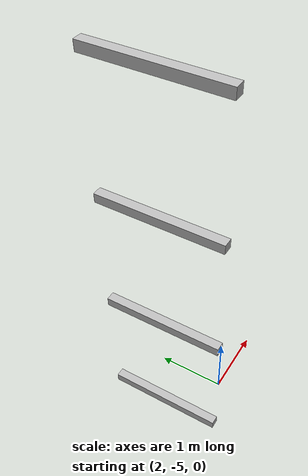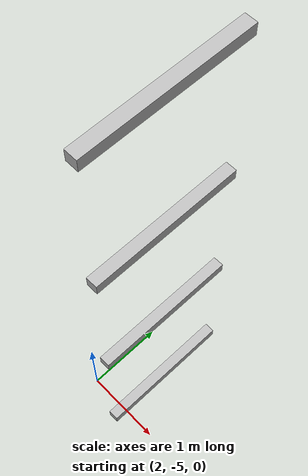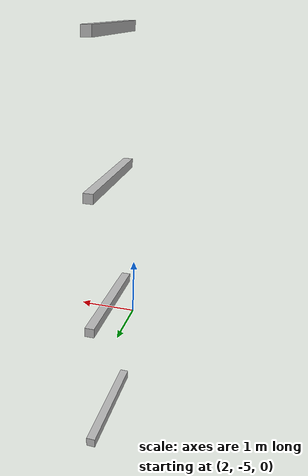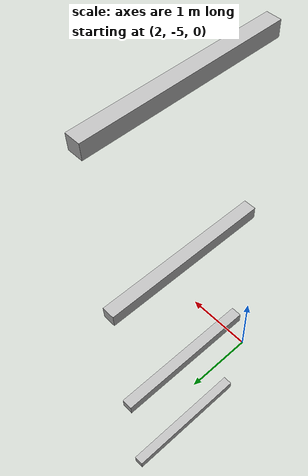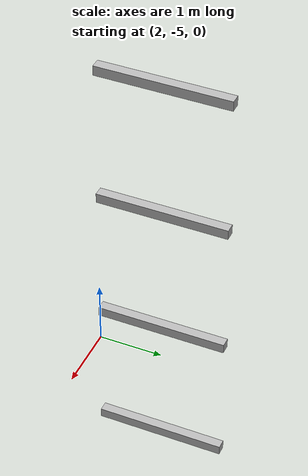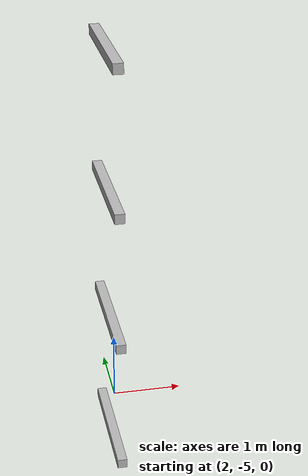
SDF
<sdf version="1.7">
 <world name="default">
  <model name="orthogonal_747_2.000.15_TS">
   <static>1</static>
   <link name="y_link_0_0_4">
    <inertial>
     <mass>1</mass>
     <inertia>
      <ixx>0.166667</ixx>
      <ixy>0</ixy>
      <ixz>0</ixz>
      <iyy>0.166667</iyy>
      <iyz>0</iyz>
      <izz>0.166667</izz>
     </inertia>
    </inertial>
    <pose>8.6 1.075 1.075 0 -0 0</pose>
    <visual name="visual_0">
     <laser_retro>92</laser_retro>
     <geometry><box><size>0.15 1e-06 0.15</size></box></geometry>
     <material>
      <script><name>Gazebo/Grey</name><uri>file://media/materials/scripts/gazebo.material</uri></script>
      <shader type="pixel"><normal_map>__default__</normal_map></shader>
      <ambient>0.678 0.498 0.659 1</ambient>
      <diffuse>0.7 0.7 0.7 1</diffuse>
      <specular>0.01 0.01 0.01 1</specular>
      <emissive>0 0 0 1</emissive>
     </material>
     <pose>0 -1 0 0 -0 0</pose>
     <transparency>1</transparency>
    </visual>
    <visual name="visual_1">
     <laser_retro>93</laser_retro>
     <geometry><box><size>0.15 1e-06 0.15</size></box></geometry>
     <material>
      <script><name>Gazebo/Grey</name><uri>file://media/materials/scripts/gazebo.material</uri></script>
      <shader type="pixel"><normal_map>__default__</normal_map></shader>
      <ambient>0.447 0.624 0.812 1</ambient>
      <diffuse>0.7 0.7 0.7 1</diffuse>
      <specular>0.01 0.01 0.01 1</specular>
      <emissive>0 0 0 1</emissive>
     </material>
     <pose>0 1 0 0 -0 0</pose>
     <transparency>1</transparency>
    </visual>
    <visual name="visual_2">
     <laser_retro>94</laser_retro>
     <geometry><box><size>0.15 2 1e-06</size></box></geometry>
     <material>
      <script><name>Gazebo/Grey</name><uri>file://media/materials/scripts/gazebo.material</uri></script>
      <shader type="pixel"><normal_map>__default__</normal_map></shader>
      <ambient>0.988 0.686 0.243 1</ambient>
      <diffuse>0.7 0.7 0.7 1</diffuse>
      <specular>0.01 0.01 0.01 1</specular>
      <emissive>0 0 0 1</emissive>
     </material>
     <pose>0 0 -0.075 0 -0 0</pose>
     <transparency>1</transparency>
    </visual>
    <visual name="visual_3">
     <laser_retro>95</laser_retro>
     <geometry><box><size>1e-06 2 0.15</size></box></geometry>
     <material>
      <script><name>Gazebo/Grey</name><uri>file://media/materials/scripts/gazebo.material</uri></script>
      <shader type="pixel"><normal_map>__default__</normal_map></shader>
      <ambient>0.988 0.914 0.31 1</ambient>
      <diffuse>0.7 0.7 0.7 1</diffuse>
      <specular>0.01 0.01 0.01 1</specular>
      <emissive>0 0 0 1</emissive>
     </material>
     <pose>0.075 0 0 0 -0 0</pose>
     <transparency>1</transparency>
    </visual>
    <visual name="visual_4">
     <laser_retro>96</laser_retro>
     <geometry><box><size>0.15 2 1e-06</size></box></geometry>
     <material>
      <script><name>Gazebo/Grey</name><uri>file://media/materials/scripts/gazebo.material</uri></script>
      <shader type="pixel"><normal_map>__default__</normal_map></shader>
      <ambient>0.937 0.161 0.161 1</ambient>
      <diffuse>0.7 0.7 0.7 1</diffuse>
      <specular>0.01 0.01 0.01 1</specular>
      <emissive>0 0 0 1</emissive>
     </material>
     <pose>0 0 0.075 0 -0 0</pose>
     <transparency>1</transparency>
    </visual>
    <visual name="visual_5">
     <laser_retro>97</laser_retro>
     <geometry><box><size>1e-06 2 0.15</size></box></geometry>
     <material>
      <script><name>Gazebo/Grey</name><uri>file://media/materials/scripts/gazebo.material</uri></script>
      <shader type="pixel"><normal_map>__default__</normal_map></shader>
      <ambient>0.541 0.886 0.204 1</ambient>
      <diffuse>0.7 0.7 0.7 1</diffuse>
      <specular>0.01 0.01 0.01 1</specular>
      <emissive>0 0 0 1</emissive>
     </material>
     <pose>-0.075 0 0 0 -0 0</pose>
     <transparency>1</transparency>
    </visual>
    <visual name="visual_texture">
     <geometry><box><size>0.149985 1.9998 0.149985</size></box></geometry>
     <material>
      <script>
       <uri>model://BASE_MODELS/simple_block_v2_textured/materials/scripts</uri>
       <uri>model://BASE_MODELS/simple_block_v2_textured/materials/textures</uri>
       <name>metal</name>
      </script>
     </material>
     <laser_retro>98</laser_retro>
    </visual>
    <collision name="collision">
     <geometry><box><size>0.15 2 0.15</size></box></geometry>
     <surface>
      <friction>
       <ode><mu>1</mu><mu2>1</mu2><fdir1>0 0 0</fdir1><slip1>0</slip1><slip2>0</slip2></ode>
       <torsional>
        <coefficient>1</coefficient>
        <patch_radius>0</patch_radius>
        <surface_radius>0</surface_radius>
        <use_patch_radius>1</use_patch_radius>
        <ode><slip>0</slip></ode>
       </torsional>
      </friction>
      <bounce><restitution_coefficient>0</restitution_coefficient><threshold>1e+06</threshold></bounce>
      <contact>
       <collide_without_contact>0</collide_without_contact>
       <collide_without_contact_bitmask>1</collide_without_contact_bitmask>
       <collide_bitmask>1</collide_bitmask>
       <ode>
        <soft_cfm>0</soft_cfm>
        <soft_erp>0.2</soft_erp>
        <kp>1e+13</kp>
        <kd>1</kd>
        <max_vel>0.01</max_vel>
        <min_depth>0</min_depth>
       </ode>
       <bullet>
        <split_impulse>1</split_impulse>
        <split_impulse_penetration_threshold>-0.01</split_impulse_penetration_threshold>
        <soft_cfm>0</soft_cfm>
        <soft_erp>0.2</soft_erp>
        <kp>1e+13</kp>
        <kd>1</kd>
       </bullet>
      </contact>
     </surface>
    </collision>
   </link>
   <link name="y_link_1_0_4">
    <inertial>
     <mass>1</mass>
     <inertia>
      <ixx>0.166667</ixx>
      <ixy>0</ixy>
      <ixz>0</ixz>
      <iyy>0.166667</iyy>
      <iyz>0</iyz>
      <izz>0.166667</izz>
     </inertia>
    </inertial>
    <pose>8.6 1.075 3.225 0 -0 0</pose>
    <visual name="visual_0">
     <laser_retro>869</laser_retro>
     <geometry><box><size>0.15 1e-06 0.15</size></box></geometry>
     <material>
      <script><name>Gazebo/Grey</name><uri>file://media/materials/scripts/gazebo.material</uri></script>
      <shader type="pixel"><normal_map>__default__</normal_map></shader>
      <ambient>0.678 0.498 0.659 1</ambient>
      <diffuse>0.7 0.7 0.7 1</diffuse>
      <specular>0.01 0.01 0.01 1</specular>
      <emissive>0 0 0 1</emissive>
     </material>
     <pose>0 -1 0 0 -0 0</pose>
     <transparency>1</transparency>
    </visual>
    <visual name="visual_1">
     <laser_retro>870</laser_retro>
     <geometry><box><size>0.15 1e-06 0.15</size></box></geometry>
     <material>
      <script><name>Gazebo/Grey</name><uri>file://media/materials/scripts/gazebo.material</uri></script>
      <shader type="pixel"><normal_map>__default__</normal_map></shader>
      <ambient>0.447 0.624 0.812 1</ambient>
      <diffuse>0.7 0.7 0.7 1</diffuse>
      <specular>0.01 0.01 0.01 1</specular>
      <emissive>0 0 0 1</emissive>
     </material>
     <pose>0 1 0 0 -0 0</pose>
     <transparency>1</transparency>
    </visual>
    <visual name="visual_2">
     <laser_retro>871</laser_retro>
     <geometry><box><size>0.15 2 1e-06</size></box></geometry>
     <material>
      <script><name>Gazebo/Grey</name><uri>file://media/materials/scripts/gazebo.material</uri></script>
      <shader type="pixel"><normal_map>__default__</normal_map></shader>
      <ambient>0.988 0.686 0.243 1</ambient>
      <diffuse>0.7 0.7 0.7 1</diffuse>
      <specular>0.01 0.01 0.01 1</specular>
      <emissive>0 0 0 1</emissive>
     </material>
     <pose>0 0 -0.075 0 -0 0</pose>
     <transparency>1</transparency>
    </visual>
    <visual name="visual_3">
     <laser_retro>872</laser_retro>
     <geometry><box><size>1e-06 2 0.15</size></box></geometry>
     <material>
      <script><name>Gazebo/Grey</name><uri>file://media/materials/scripts/gazebo.material</uri></script>
      <shader type="pixel"><normal_map>__default__</normal_map></shader>
      <ambient>0.988 0.914 0.31 1</ambient>
      <diffuse>0.7 0.7 0.7 1</diffuse>
      <specular>0.01 0.01 0.01 1</specular>
      <emissive>0 0 0 1</emissive>
     </material>
     <pose>0.075 0 0 0 -0 0</pose>
     <transparency>1</transparency>
    </visual>
    <visual name="visual_4">
     <laser_retro>873</laser_retro>
     <geometry><box><size>0.15 2 1e-06</size></box></geometry>
     <material>
      <script><name>Gazebo/Grey</name><uri>file://media/materials/scripts/gazebo.material</uri></script>
      <shader type="pixel"><normal_map>__default__</normal_map></shader>
      <ambient>0.937 0.161 0.161 1</ambient>
      <diffuse>0.7 0.7 0.7 1</diffuse>
      <specular>0.01 0.01 0.01 1</specular>
      <emissive>0 0 0 1</emissive>
     </material>
     <pose>0 0 0.075 0 -0 0</pose>
     <transparency>1</transparency>
    </visual>
    <visual name="visual_5">
     <laser_retro>874</laser_retro>
     <geometry><box><size>1e-06 2 0.15</size></box></geometry>
     <material>
      <script><name>Gazebo/Grey</name><uri>file://media/materials/scripts/gazebo.material</uri></script>
      <shader type="pixel"><normal_map>__default__</normal_map></shader>
      <ambient>0.541 0.886 0.204 1</ambient>
      <diffuse>0.7 0.7 0.7 1</diffuse>
      <specular>0.01 0.01 0.01 1</specular>
      <emissive>0 0 0 1</emissive>
     </material>
     <pose>-0.075 0 0 0 -0 0</pose>
     <transparency>1</transparency>
    </visual>
    <visual name="visual_texture">
     <geometry><box><size>0.149985 1.9998 0.149985</size></box></geometry>
     <material>
      <script>
       <uri>model://BASE_MODELS/simple_block_v2_textured/materials/scripts</uri>
       <uri>model://BASE_MODELS/simple_block_v2_textured/materials/textures</uri>
       <name>metal</name>
      </script>
     </material>
     <laser_retro>875</laser_retro>
    </visual>
    <collision name="collision">
     <geometry><box><size>0.15 2 0.15</size></box></geometry>
     <surface>
      <friction>
       <ode><mu>1</mu><mu2>1</mu2><fdir1>0 0 0</fdir1><slip1>0</slip1><slip2>0</slip2></ode>
       <torsional>
        <coefficient>1</coefficient>
        <patch_radius>0</patch_radius>
        <surface_radius>0</surface_radius>
        <use_patch_radius>1</use_patch_radius>
        <ode><slip>0</slip></ode>
       </torsional>
      </friction>
      <bounce><restitution_coefficient>0</restitution_coefficient><threshold>1e+06</threshold></bounce>
      <contact>
       <collide_without_contact>0</collide_without_contact>
       <collide_without_contact_bitmask>1</collide_without_contact_bitmask>
       <collide_bitmask>1</collide_bitmask>
       <ode>
        <soft_cfm>0</soft_cfm>
        <soft_erp>0.2</soft_erp>
        <kp>1e+13</kp>
        <kd>1</kd>
        <max_vel>0.01</max_vel>
        <min_depth>0</min_depth>
       </ode>
       <bullet>
        <split_impulse>1</split_impulse>
        <split_impulse_penetration_threshold>-0.01</split_impulse_penetration_threshold>
        <soft_cfm>0</soft_cfm>
        <soft_erp>0.2</soft_erp>
        <kp>1e+13</kp>
        <kd>1</kd>
       </bullet>
      </contact>
     </surface>
    </collision>
   </link>
   <link name="y_link_2_0_4">
    <inertial>
     <mass>1</mass>
     <inertia>
      <ixx>0.166667</ixx>
      <ixy>0</ixy>
      <ixz>0</ixz>
      <iyy>0.166667</iyy>
      <iyz>0</iyz>
      <izz>0.166667</izz>
     </inertia>
    </inertial>
    <pose>8.6 1.075 5.375 0 -0 0</pose>
    <visual name="visual_0">
     <laser_retro>1772</laser_retro>
     <geometry><box><size>0.15 1e-06 0.15</size></box></geometry>
     <material>
      <script><name>Gazebo/Grey</name><uri>file://media/materials/scripts/gazebo.material</uri></script>
      <shader type="pixel"><normal_map>__default__</normal_map></shader>
      <ambient>0.678 0.498 0.659 1</ambient>
      <diffuse>0.7 0.7 0.7 1</diffuse>
      <specular>0.01 0.01 0.01 1</specular>
      <emissive>0 0 0 1</emissive>
     </material>
     <pose>0 -1 0 0 -0 0</pose>
     <transparency>1</transparency>
    </visual>
    <visual name="visual_1">
     <laser_retro>1773</laser_retro>
     <geometry><box><size>0.15 1e-06 0.15</size></box></geometry>
     <material>
      <script><name>Gazebo/Grey</name><uri>file://media/materials/scripts/gazebo.material</uri></script>
      <shader type="pixel"><normal_map>__default__</normal_map></shader>
      <ambient>0.447 0.624 0.812 1</ambient>
      <diffuse>0.7 0.7 0.7 1</diffuse>
      <specular>0.01 0.01 0.01 1</specular>
      <emissive>0 0 0 1</emissive>
     </material>
     <pose>0 1 0 0 -0 0</pose>
     <transparency>1</transparency>
    </visual>
    <visual name="visual_2">
     <laser_retro>1774</laser_retro>
     <geometry><box><size>0.15 2 1e-06</size></box></geometry>
     <material>
      <script><name>Gazebo/Grey</name><uri>file://media/materials/scripts/gazebo.material</uri></script>
      <shader type="pixel"><normal_map>__default__</normal_map></shader>
      <ambient>0.988 0.686 0.243 1</ambient>
      <diffuse>0.7 0.7 0.7 1</diffuse>
      <specular>0.01 0.01 0.01 1</specular>
      <emissive>0 0 0 1</emissive>
     </material>
     <pose>0 0 -0.075 0 -0 0</pose>
     <transparency>1</transparency>
    </visual>
    <visual name="visual_3">
     <laser_retro>1775</laser_retro>
     <geometry><box><size>1e-06 2 0.15</size></box></geometry>
     <material>
      <script><name>Gazebo/Grey</name><uri>file://media/materials/scripts/gazebo.material</uri></script>
      <shader type="pixel"><normal_map>__default__</normal_map></shader>
      <ambient>0.988 0.914 0.31 1</ambient>
      <diffuse>0.7 0.7 0.7 1</diffuse>
      <specular>0.01 0.01 0.01 1</specular>
      <emissive>0 0 0 1</emissive>
     </material>
     <pose>0.075 0 0 0 -0 0</pose>
     <transparency>1</transparency>
    </visual>
    <visual name="visual_4">
     <laser_retro>1776</laser_retro>
     <geometry><box><size>0.15 2 1e-06</size></box></geometry>
     <material>
      <script><name>Gazebo/Grey</name><uri>file://media/materials/scripts/gazebo.material</uri></script>
      <shader type="pixel"><normal_map>__default__</normal_map></shader>
      <ambient>0.937 0.161 0.161 1</ambient>
      <diffuse>0.7 0.7 0.7 1</diffuse>
      <specular>0.01 0.01 0.01 1</specular>
      <emissive>0 0 0 1</emissive>
     </material>
     <pose>0 0 0.075 0 -0 0</pose>
     <transparency>1</transparency>
    </visual>
    <visual name="visual_5">
     <laser_retro>1777</laser_retro>
     <geometry><box><size>1e-06 2 0.15</size></box></geometry>
     <material>
      <script><name>Gazebo/Grey</name><uri>file://media/materials/scripts/gazebo.material</uri></script>
      <shader type="pixel"><normal_map>__default__</normal_map></shader>
      <ambient>0.541 0.886 0.204 1</ambient>
      <diffuse>0.7 0.7 0.7 1</diffuse>
      <specular>0.01 0.01 0.01 1</specular>
      <emissive>0 0 0 1</emissive>
     </material>
     <pose>-0.075 0 0 0 -0 0</pose>
     <transparency>1</transparency>
    </visual>
    <visual name="visual_texture">
     <geometry><box><size>0.149985 1.9998 0.149985</size></box></geometry>
     <material>
      <script>
       <uri>model://BASE_MODELS/simple_block_v2_textured/materials/scripts</uri>
       <uri>model://BASE_MODELS/simple_block_v2_textured/materials/textures</uri>
       <name>metal</name>
      </script>
     </material>
     <laser_retro>1778</laser_retro>
    </visual>
    <collision name="collision">
     <geometry><box><size>0.15 2 0.15</size></box></geometry>
     <surface>
      <friction>
       <ode><mu>1</mu><mu2>1</mu2><fdir1>0 0 0</fdir1><slip1>0</slip1><slip2>0</slip2></ode>
       <torsional>
        <coefficient>1</coefficient>
        <patch_radius>0</patch_radius>
        <surface_radius>0</surface_radius>
        <use_patch_radius>1</use_patch_radius>
        <ode><slip>0</slip></ode>
       </torsional>
      </friction>
      <bounce><restitution_coefficient>0</restitution_coefficient><threshold>1e+06</threshold></bounce>
      <contact>
       <collide_without_contact>0</collide_without_contact>
       <collide_without_contact_bitmask>1</collide_without_contact_bitmask>
       <collide_bitmask>1</collide_bitmask>
       <ode>
        <soft_cfm>0</soft_cfm>
        <soft_erp>0.2</soft_erp>
        <kp>1e+13</kp>
        <kd>1</kd>
        <max_vel>0.01</max_vel>
        <min_depth>0</min_depth>
       </ode>
       <bullet>
        <split_impulse>1</split_impulse>
        <split_impulse_penetration_threshold>-0.01</split_impulse_penetration_threshold>
        <soft_cfm>0</soft_cfm>
        <soft_erp>0.2</soft_erp>
        <kp>1e+13</kp>
        <kd>1</kd>
       </bullet>
      </contact>
     </surface>
    </collision>
   </link>
   <link name="y_link_3_0_4">
    <inertial>
     <mass>1</mass>
     <inertia>
      <ixx>0.166667</ixx>
      <ixy>0</ixy>
      <ixz>0</ixz>
      <iyy>0.166667</iyy>
      <iyz>0</iyz>
      <izz>0.166667</izz>
     </inertia>
    </inertial>
    <pose>8.6 1.075 7.525 0 -0 0</pose>
    <visual name="visual_0">
     <laser_retro>2675</laser_retro>
     <geometry><box><size>0.15 1e-06 0.15</size></box></geometry>
     <material>
      <script><name>Gazebo/Grey</name><uri>file://media/materials/scripts/gazebo.material</uri></script>
      <shader type="pixel"><normal_map>__default__</normal_map></shader>
      <ambient>0.678 0.498 0.659 1</ambient>
      <diffuse>0.7 0.7 0.7 1</diffuse>
      <specular>0.01 0.01 0.01 1</specular>
      <emissive>0 0 0 1</emissive>
     </material>
     <pose>0 -1 0 0 -0 0</pose>
     <transparency>1</transparency>
    </visual>
    <visual name="visual_1">
     <laser_retro>2676</laser_retro>
     <geometry><box><size>0.15 1e-06 0.15</size></box></geometry>
     <material>
      <script><name>Gazebo/Grey</name><uri>file://media/materials/scripts/gazebo.material</uri></script>
      <shader type="pixel"><normal_map>__default__</normal_map></shader>
      <ambient>0.447 0.624 0.812 1</ambient>
      <diffuse>0.7 0.7 0.7 1</diffuse>
      <specular>0.01 0.01 0.01 1</specular>
      <emissive>0 0 0 1</emissive>
     </material>
     <pose>0 1 0 0 -0 0</pose>
     <transparency>1</transparency>
    </visual>
    <visual name="visual_2">
     <laser_retro>2677</laser_retro>
     <geometry><box><size>0.15 2 1e-06</size></box></geometry>
     <material>
      <script><name>Gazebo/Grey</name><uri>file://media/materials/scripts/gazebo.material</uri></script>
      <shader type="pixel"><normal_map>__default__</normal_map></shader>
      <ambient>0.988 0.686 0.243 1</ambient>
      <diffuse>0.7 0.7 0.7 1</diffuse>
      <specular>0.01 0.01 0.01 1</specular>
      <emissive>0 0 0 1</emissive>
     </material>
     <pose>0 0 -0.075 0 -0 0</pose>
     <transparency>1</transparency>
    </visual>
    <visual name="visual_3">
     <laser_retro>2678</laser_retro>
     <geometry><box><size>1e-06 2 0.15</size></box></geometry>
     <material>
      <script><name>Gazebo/Grey</name><uri>file://media/materials/scripts/gazebo.material</uri></script>
      <shader type="pixel"><normal_map>__default__</normal_map></shader>
      <ambient>0.988 0.914 0.31 1</ambient>
      <diffuse>0.7 0.7 0.7 1</diffuse>
      <specular>0.01 0.01 0.01 1</specular>
      <emissive>0 0 0 1</emissive>
     </material>
     <pose>0.075 0 0 0 -0 0</pose>
     <transparency>1</transparency>
    </visual>
    <visual name="visual_4">
     <laser_retro>2679</laser_retro>
     <geometry><box><size>0.15 2 1e-06</size></box></geometry>
     <material>
      <script><name>Gazebo/Grey</name><uri>file://media/materials/scripts/gazebo.material</uri></script>
      <shader type="pixel"><normal_map>__default__</normal_map></shader>
      <ambient>0.937 0.161 0.161 1</ambient>
      <diffuse>0.7 0.7 0.7 1</diffuse>
      <specular>0.01 0.01 0.01 1</specular>
      <emissive>0 0 0 1</emissive>
     </material>
     <pose>0 0 0.075 0 -0 0</pose>
     <transparency>1</transparency>
    </visual>
    <visual name="visual_5">
     <laser_retro>2680</laser_retro>
     <geometry><box><size>1e-06 2 0.15</size></box></geometry>
     <material>
      <script><name>Gazebo/Grey</name><uri>file://media/materials/scripts/gazebo.material</uri></script>
      <shader type="pixel"><normal_map>__default__</normal_map></shader>
      <ambient>0.541 0.886 0.204 1</ambient>
      <diffuse>0.7 0.7 0.7 1</diffuse>
      <specular>0.01 0.01 0.01 1</specular>
      <emissive>0 0 0 1</emissive>
     </material>
     <pose>-0.075 0 0 0 -0 0</pose>
     <transparency>1</transparency>
    </visual>
    <visual name="visual_texture">
     <geometry><box><size>0.149985 1.9998 0.149985</size></box></geometry>
     <material>
      <script>
       <uri>model://BASE_MODELS/simple_block_v2_textured/materials/scripts</uri>
       <uri>model://BASE_MODELS/simple_block_v2_textured/materials/textures</uri>
       <name>metal</name>
      </script>
     </material>
     <laser_retro>2681</laser_retro>
    </visual>
    <collision name="collision">
     <geometry><box><size>0.15 2 0.15</size></box></geometry>
     <surface>
      <friction>
       <ode><mu>1</mu><mu2>1</mu2><fdir1>0 0 0</fdir1><slip1>0</slip1><slip2>0</slip2></ode>
       <torsional>
        <coefficient>1</coefficient>
        <patch_radius>0</patch_radius>
        <surface_radius>0</surface_radius>
        <use_patch_radius>1</use_patch_radius>
        <ode><slip>0</slip></ode>
       </torsional>
      </friction>
      <bounce><restitution_coefficient>0</restitution_coefficient><threshold>1e+06</threshold></bounce>
      <contact>
       <collide_without_contact>0</collide_without_contact>
       <collide_without_contact_bitmask>1</collide_without_contact_bitmask>
       <collide_bitmask>1</collide_bitmask>
       <ode>
        <soft_cfm>0</soft_cfm>
        <soft_erp>0.2</soft_erp>
        <kp>1e+13</kp>
        <kd>1</kd>
        <max_vel>0.01</max_vel>
        <min_depth>0</min_depth>
       </ode>
       <bullet>
        <split_impulse>1</split_impulse>
        <split_impulse_penetration_threshold>-0.01</split_impulse_penetration_threshold>
        <soft_cfm>0</soft_cfm>
        <soft_erp>0.2</soft_erp>
        <kp>1e+13</kp>
        <kd>1</kd>
       </bullet>
      </contact>
     </surface>
    </collision>
   </link>
   <pose>-6.47624 -5 -2.5 0 -0 0</pose>
  </model>
 </world>
</sdf>
